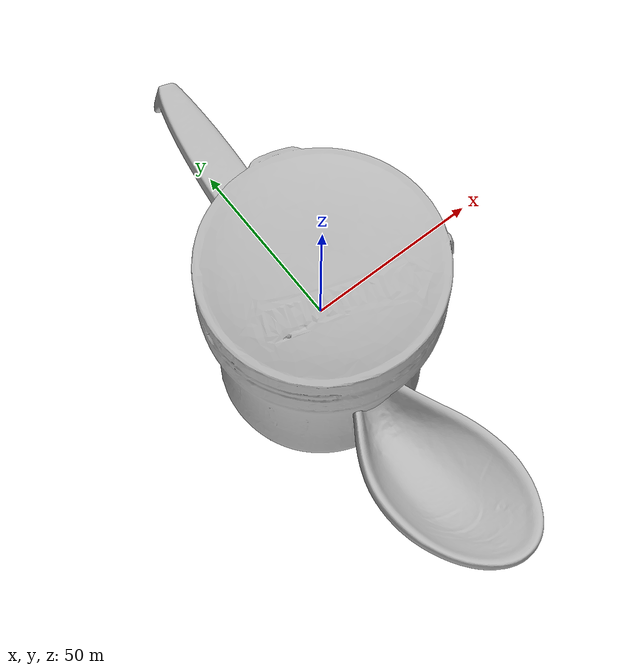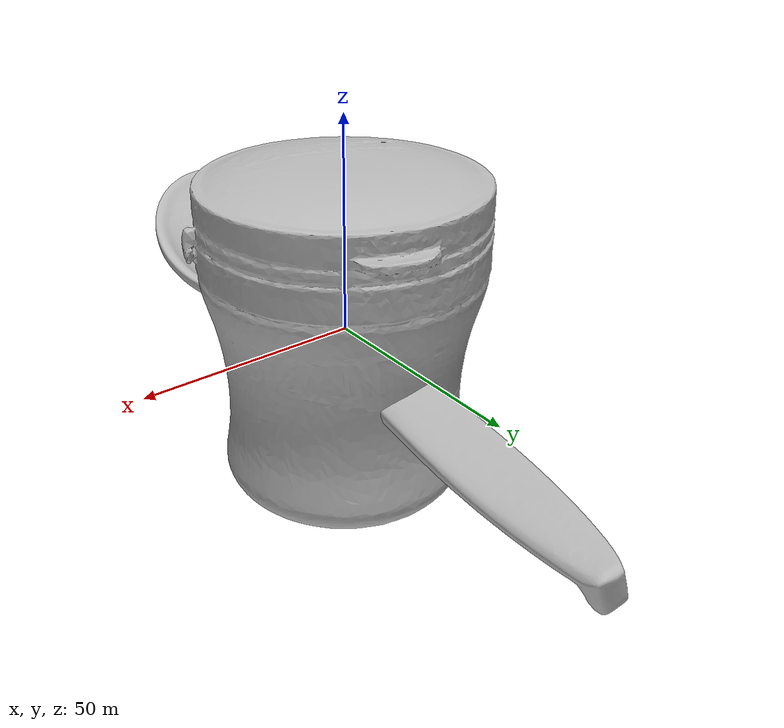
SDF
<sdf version="1.4">
 <world name="default">
  <light name="light1" type="point">
   <pose>0 0 1 0 0 0</pose>
   <diffuse>3 3 3 1</diffuse>
   <specular>3 3 3 1</specular>
  </light>
  <light name="light2" type="point">
   <pose>0 0.5 2 0 0 0</pose>
   <diffuse>1 1 1 1</diffuse>
   <specular>1 1 1 1</specular>
  </light>
  <light name="light3" type="point">
   <pose>0 0.5 2 0 0 0</pose>
   <diffuse>3 3 3 1</diffuse>
   <specular>3 3 3 1</specular>
  </light>
  <scene><ambient>0.7 0.7 0.7</ambient></scene>
  <model name="bottle1">
   <link name="link_bottle1">
    <collision name="default">
     <geometry>
      <mesh><uri>model://green_arrow/collision_meshes/collision.obj</uri><scale>1.0 1.0 1.0</scale></mesh>
     </geometry>
     <surface>
      <friction><ode><mu>0.5</mu><mu2>0.5</mu2></ode></friction>
      <contact><ode><max_vel>0</max_vel><min_depth>0.0001</min_depth><kp>1e8</kp></ode></contact>
     </surface>
    </collision>
    <visual name="default">
     <geometry>
      <mesh><uri>model://green_arrow/visual_meshes/visual.dae</uri><scale>1.0 1.0 1.0</scale></mesh>
     </geometry>
    </visual>
    <inertial>
     <mass>0.31872013211250305</mass>
     <pose>0.0005358478520065546 -0.0008270691032521427 0.002210969803854823 -0.06332250060756175 0.012985582117300467 0.6741007804522225</pose>
     <inertia>
      <ixx>0.00023120124</ixx>
      <iyy>0.000230851</iyy>
      <izz>0.0001492862</izz>
      <ixy>0</ixy>
      <ixz>0</ixz>
      <iyz>0</iyz>
     </inertia>
    </inertial>
   </link>
   <pose>0.007378897629678249 -0.0023881997913122177 0.03896164894104004 0.04528470062109362 0.024256111053451258 -1.0057966708077684</pose>
  </model>
  <model name="bottle2">
   <link name="link_bottle2">
    <collision name="default">
     <geometry>
      <mesh><uri>model://pigeon/collision_meshes/collision.obj</uri><scale>1.0 1.0 1.0</scale></mesh>
     </geometry>
     <surface>
      <friction><ode><mu>0.5</mu><mu2>0.5</mu2></ode></friction>
      <contact><ode><max_vel>0</max_vel><min_depth>0.0001</min_depth><kp>1e8</kp></ode></contact>
     </surface>
    </collision>
    <visual name="default">
     <geometry><mesh><uri>model://pigeon/visual_meshes/visual.dae</uri><scale>1.0 1.0 1.0</scale></mesh></geometry>
    </visual>
    <inertial>
     <mass>0.5279804468154907</mass>
     <pose>-9.675472392700613e-05 -0.0001927677367348224 -0.01593620702624321 -0.011704407495178063 -0.0012978199512556723 -0.04198835484465517</pose>
     <inertia>
      <ixx>0.0013198232</ixx>
      <iyy>0.0014089285</iyy>
      <izz>0.000271492</izz>
      <ixy>0</ixy>
      <ixz>0</ixz>
      <iyz>0</iyz>
     </inertia>
    </inertial>
   </link>
   <pose>0.2299630492925644 -0.35429149866104126 0.09864479303359985 2.407649226744814e-05 3.67665557460524e-06 2.463470769759439</pose>
  </model>
  <model name="silverware1">
   <link name="link_silverware1">
    <collision name="default">
     <geometry>
      <mesh><uri>model://doraemon_spoon/collision_meshes/collision.obj</uri><scale>1.0 1.0 1.0</scale></mesh>
     </geometry>
     <surface>
      <friction><ode><mu>0.5</mu><mu2>0.5</mu2></ode></friction>
      <contact><ode><max_vel>0</max_vel><min_depth>0.0001</min_depth><kp>1e8</kp></ode></contact>
     </surface>
    </collision>
    <visual name="default">
     <geometry>
      <mesh><uri>model://doraemon_spoon/visual_meshes/visual.dae</uri><scale>1.0 1.0 1.0</scale></mesh>
     </geometry>
    </visual>
    <inertial>
     <mass>0.014849366620182991</mass>
     <pose>-0.022165074944496155 -0.0006374582299031317 -0.0033325457479804754 -0.009146985479672626 0.07380416127774835 -0.014123827206003371</pose>
     <inertia>
      <ixx>1.1631438e-06</ixx>
      <iyy>3.3035012e-05</iyy>
      <izz>3.359665e-05</izz>
      <ixy>0</ixy>
      <ixz>0</ixz>
      <iyz>0</iyz>
     </inertia>
    </inertial>
   </link>
   <pose>0.2891983091831207 0.2792360186576843 0.014739244244992733 0.27898832601539714 -0.010337069997824003 1.472469010098418</pose>
  </model>
  <model name="stationery1">
   <link name="link_stationery1">
    <collision name="default">
     <geometry>
      <mesh><uri>model://correction_fuid/collision_meshes/collision.obj</uri><scale>1.0 1.0 1.0</scale></mesh>
     </geometry>
     <surface>
      <friction><ode><mu>0.5</mu><mu2>0.5</mu2></ode></friction>
      <contact><ode><max_vel>0</max_vel><min_depth>0.0001</min_depth><kp>1e8</kp></ode></contact>
     </surface>
    </collision>
    <visual name="default">
     <geometry>
      <mesh><uri>model://correction_fuid/visual_meshes/visual.dae</uri><scale>1.0 1.0 1.0</scale></mesh>
     </geometry>
    </visual>
    <inertial>
     <mass>0.03422689810395241</mass>
     <pose>-0.00012557733862195164 -0.0009722901741042733 -0.001618212671019137 -0.010846609605282003 0.019488228935667613 -0.015992456651572746</pose>
     <inertia>
      <ixx>3.3149332e-05</ixx>
      <iyy>2.0062398e-06</iyy>
      <izz>3.4012115e-05</izz>
      <ixy>0</ixy>
      <ixz>0</ixz>
      <iyz>0</iyz>
     </inertia>
    </inertial>
   </link>
   <pose>0.2640168070793152 0.20264364778995514 0.009632831439375877 -0.0017271026342150864 -0.056168633984755946 -2.570239576803228</pose>
  </model>
  <model name="bowl1">
   <link name="link_bowl1">
    <collision name="default">
     <geometry>
      <mesh><uri>model://doraemon_bowl/collision_meshes/collision.obj</uri><scale>1.0 1.0 1.0</scale></mesh>
     </geometry>
     <surface>
      <friction><ode><mu>0.5</mu><mu2>0.5</mu2></ode></friction>
      <contact><ode><max_vel>0</max_vel><min_depth>0.0001</min_depth><kp>1e8</kp></ode></contact>
     </surface>
    </collision>
    <visual name="default">
     <geometry>
      <mesh><uri>model://doraemon_bowl/visual_meshes/visual.dae</uri><scale>1.0 1.0 1.0</scale></mesh>
     </geometry>
    </visual>
    <inertial>
     <mass>0.10659078508615494</mass>
     <pose>-0.014629560522735119 0.00048571196384727955 -0.002086488762870431 -0.00509398386316645 -0.10568401530986889 -0.026426397124795446</pose>
     <inertia>
      <ixx>0.00014780516</ixx>
      <iyy>0.00019451023</iyy>
      <izz>0.00028617028</izz>
      <ixy>0</ixy>
      <ixz>0</ixz>
      <iyz>0</iyz>
     </inertia>
    </inertial>
   </link>
   <pose>0.19395598769187927 0.18979328870773315 0.025905482470989227 0.00859366891945369 0.0063439290651579544 2.3176858090990398</pose>
  </model>
  <model name="cup1">
   <link name="link_cup1">
    <collision name="default">
     <geometry>
      <mesh><uri>model://doraemon_cup/collision_meshes/collision.obj</uri><scale>1.0 1.0 1.0</scale></mesh>
     </geometry>
     <surface>
      <friction><ode><mu>0.5</mu><mu2>0.5</mu2></ode></friction>
      <contact><ode><max_vel>0</max_vel><min_depth>0.0001</min_depth><kp>1e8</kp></ode></contact>
     </surface>
    </collision>
    <visual name="default">
     <geometry>
      <mesh><uri>model://doraemon_cup/visual_meshes/visual.dae</uri><scale>1.0 1.0 1.0</scale></mesh>
     </geometry>
    </visual>
    <inertial>
     <mass>0.07019124925136566</mass>
     <pose>-0.0003292977053206414 -0.0016633619088679552 -0.0022522560320794582 0.19498543632694942 -0.013693723781048914 -0.3205469926711019</pose>
     <inertia>
      <ixx>9.599299e-05</ixx>
      <iyy>9.2830705e-05</iyy>
      <izz>7.5864096e-05</izz>
      <ixy>0</ixy>
      <ixz>0</ixz>
      <iyz>0</iyz>
     </inertia>
    </inertial>
   </link>
   <pose>0.10967695713043213 0.32142651081085205 0.04623321443796158 -0.011389391036387735 -0.009243736365408213 1.5401639902463318</pose>
  </model>
  <model name="plate1">
   <link name="link_plate1">
    <collision name="default">
     <geometry>
      <mesh><uri>model://hello_kitty_plate/collision_meshes/collision.obj</uri><scale>1.0 1.0 1.0</scale></mesh>
     </geometry>
     <surface>
      <friction><ode><mu>0.5</mu><mu2>0.5</mu2></ode></friction>
      <contact><ode><max_vel>0</max_vel><min_depth>0.0001</min_depth><kp>1e8</kp></ode></contact>
     </surface>
    </collision>
    <visual name="default">
     <geometry>
      <mesh><uri>model://hello_kitty_plate/visual_meshes/visual.dae</uri><scale>1.0 1.0 1.0</scale></mesh>
     </geometry>
    </visual>
    <inertial>
     <mass>0.03849242627620697</mass>
     <pose>0.007314295973628759 0.00028937432216480374 -0.0027947183698415756 -0.00010431794154861864 -0.007054443662422379 -0.014449020506613262</pose>
     <inertia>
      <ixx>7.4224925e-05</ixx>
      <iyy>0.00014008483</iyy>
      <izz>0.00021270475</izz>
      <ixy>0</ixy>
      <ixz>0</ixz>
      <iyz>0</iyz>
     </inertia>
    </inertial>
   </link>
   <pose>0.09600259363651276 -0.05910325050354004 0.00829144474118948 0.000465755612566658 0.004173176754417015 0.8087817235078497</pose>
  </model>
  <model name="box4">
   <link name="link_box4">
    <collision name="default">
     <geometry>
      <mesh><uri>model://wooden_puzzle2/collision_meshes/collision.obj</uri><scale>1.0 1.0 1.0</scale></mesh>
     </geometry>
     <surface>
      <friction><ode><mu>0.5</mu><mu2>0.5</mu2></ode></friction>
      <contact><ode><max_vel>0</max_vel><min_depth>0.0001</min_depth><kp>1e8</kp></ode></contact>
     </surface>
    </collision>
    <visual name="default">
     <geometry>
      <mesh><uri>model://wooden_puzzle2/visual_meshes/visual.dae</uri><scale>1.0 1.0 1.0</scale></mesh>
     </geometry>
    </visual>
    <inertial>
     <mass>0.023858843371272087</mass>
     <pose>2.7402536943554878e-05 4.997663199901581e-05 6.587122334167361e-05 -0.1920347142936951 0.6112821219690274 -0.6338705729322873</pose>
     <inertia>
      <ixx>4.4351036e-06</ixx>
      <iyy>4.557319e-06</iyy>
      <izz>4.4924864e-06</izz>
      <ixy>0</ixy>
      <ixz>0</ixz>
      <iyz>0</iyz>
     </inertia>
    </inertial>
   </link>
   <pose>0.26370567083358765 0.2892475426197052 0.016917729750275612 0.020848588559410304 0.0007209352473932497 1.5206663592468104</pose>
  </model>
  <physics type="ode">
   <max_contacts>50</max_contacts>
   <ode>
    <solver><type>quick</type><iters>75</iters></solver>
    <constraints>
     <contact_max_correcting_vel>0</contact_max_correcting_vel>
     <contact_surface_layer>0</contact_surface_layer>
    </constraints>
   </ode>
  </physics>
 </world>
</sdf>
